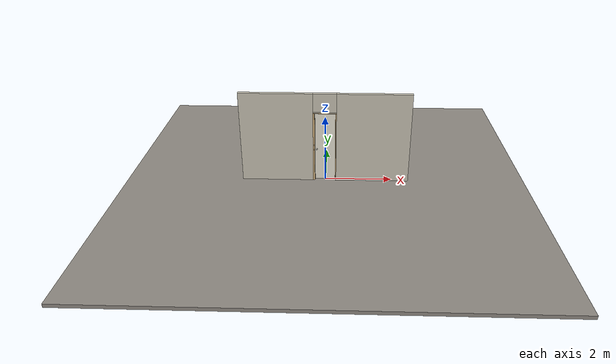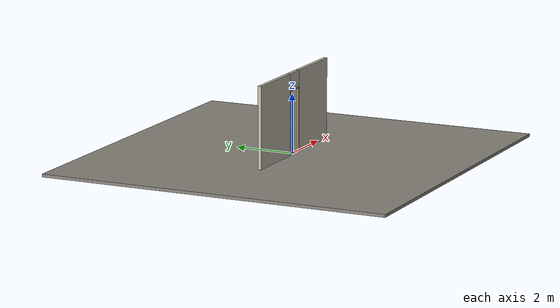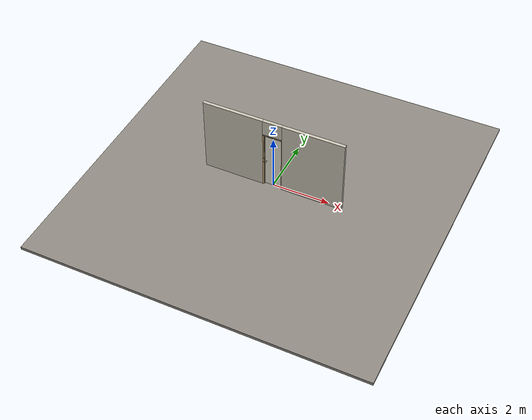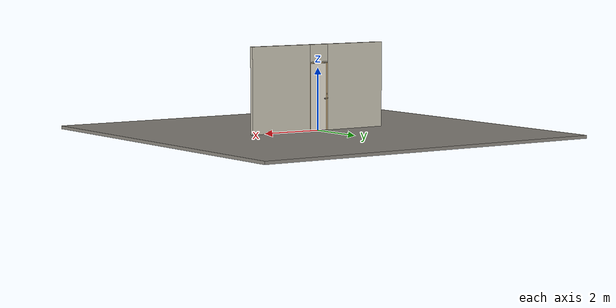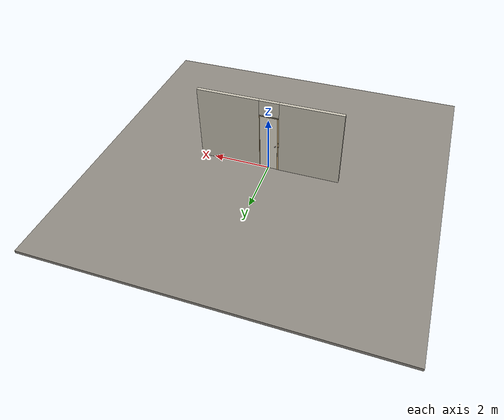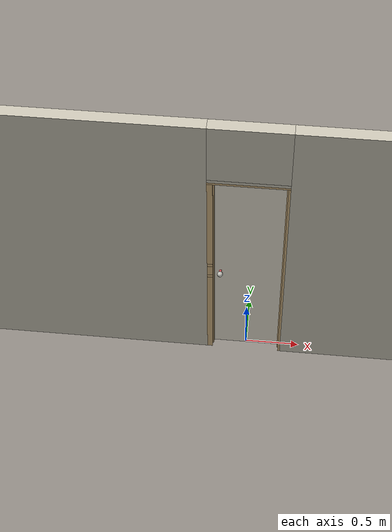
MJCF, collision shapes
<?xml version="1.0" ?>
<mujoco model="db0633_swing_single_minimal">
  <compiler angle="radian" meshdir="../../hardware" texturedir="../../textures" autolimits="true" inertiafromgeom="false"/>
  <option timestep="0.002" integrator="implicitfast" cone="elliptic" impratio="10" noslip_iterations="3">
    <flag multiccd="enable"/>
  </option>
  <size memory="16M"/>
  <default>
    <geom condim="4" solref="0.005 1" solimp="0.95 0.99 0.001"/>
    <joint solreflimit="0.005 1" solimplimit="0.95 0.99 0.001"/>
    <tendon solreflimit="0.005 1"/>
    <equality solref="0.002 1"/>
  </default>
  <visual>
    <headlight ambient="0.4 0.4 0.4" diffuse="0.7 0.7 0.7" specular="0.2 0.2 0.2"/>
    <quality shadowsize="4096"/>
    <map znear="0.01" zfar="60"/>
  </visual>
  <asset>
    <mesh name="knob_0ccd68d739" file="knob_0ccd68d739.obj"/>
    <material name="mat_floor" rgba="0.55 0.53 0.5 1" specular="0.2" shininess="0.15" reflectance="0"/>
    <material name="mat_wall" rgba="0.78 0.76 0.7 1" specular="0.2" shininess="0.1" reflectance="0"/>
    <material name="mat_leaf" rgba="0.9 0.88 0.82 1" specular="0.2" shininess="0.58" reflectance="0"/>
    <material name="mat_leaf_panel" rgba="0.828 0.81 0.754 1" specular="0.2" shininess="0.58" reflectance="0"/>
    <material name="mat_hinge" rgba="0.65 0.66 0.68 1" specular="0.74" shininess="0.5" reflectance="0.36"/>
    <material name="mat_op_hpl" rgba="0.75 0.75 0.72 1" specular="0.2" shininess="0.65" reflectance="0"/>
    <material name="mat_trim" rgba="0.85 0.66 0.3 1" specular="0.8" shininess="0.75" reflectance="0.4"/>
    <material name="mat_bolt" rgba="0.85 0.66 0.3 1" specular="0.8" shininess="0.75" reflectance="0.4"/>
    <material name="mat_deadbolt" rgba="0.85 0.66 0.3 1" specular="0.8" shininess="0.75" reflectance="0.4"/>
    <material name="mat_frame" rgba="0.82 0.7 0.5 1" specular="0.2" shininess="0.45" reflectance="0"/>
    <material name="mat_seal" rgba="0.1 0.1 0.1 1" specular="0.2" shininess="0.1" reflectance="0"/>
    <texture name="skybox" type="skybox" builtin="gradient" rgb1="0.6 0.7 0.85" rgb2="0.9 0.92 0.95" width="256" height="256"/>
  </asset>
  <worldbody>
    <light name="sun" pos="1.5 -2.5 4" dir="-0.3 0.5 -0.8" directional="true" diffuse="0.8 0.8 0.8" specular="0.3 0.3 0.3" castshadow="true"/>
    <light name="fill" pos="-1.5 2.5 3" dir="0.3 -0.5 -0.7" directional="true" diffuse="0.35 0.35 0.4" castshadow="false"/>
    <camera name="robot_view" pos="0 -2.670812 1.812087" xyaxes="1 0 0 0 0.26963 0.962964" fovy="52"/>
    <camera name="far_view" pos="0 2.604812 1.812087" xyaxes="-1 0 0 0 -0.26963 0.962964" fovy="52"/>
    <camera name="iso" pos="-2.004737 -2.248762 2.234138" xyaxes="0.741536 -0.670913 0 0.242917 0.268487 0.932151" fovy="46"/>
    <camera name="detail_handle" pos="-0.0645 -0.86375 1.296" xyaxes="0.97561 0.219512 0 -0.070934 0.315262 0.94635" fovy="38"/>
    <geom name="floor" type="box" size="6 6 0.05" pos="0 0 -0.05" material="mat_floor" group="0" contype="1" conaffinity="1" friction="0.8 0.005 0.0001" density="2400"/>
    <geom name="wall_left" type="box" size="1.07125 0.0575 1.3735" pos="-1.42875 -0.033 1.3735" material="mat_wall" group="0" contype="1" conaffinity="1" friction="0.6 0.005 0.0001" density="800"/>
    <geom name="wall_right" type="box" size="1.08625 0.0575 1.3735" pos="1.41375 -0.033 1.3735" material="mat_wall" group="0" contype="1" conaffinity="1" friction="0.6 0.005 0.0001" density="800"/>
    <geom name="wall_header" type="box" size="0.3425 0.0575 0.2755" pos="-0.015 -0.033 2.4715" material="mat_wall" group="0" contype="1" conaffinity="1" friction="0.6 0.005 0.0001" density="800"/>
    <geom name="jamb_hinge" type="box" size="0.0095 0.0575 1.0735" pos="0.318 -0.033 1.0735" material="mat_frame" group="0" contype="1" conaffinity="1" friction="0.6 0.005 0.0001" density="400"/>
    <geom name="strike_1016_wall_n" type="box" size="0.0245 0.041325 0.0167" pos="-0.333 -0.049175 1.016" material="mat_frame" group="0" contype="1" conaffinity="1" friction="0.6 0.005 0.0001" density="400"/>
    <geom name="strike_1016_wall_p" type="box" size="0.0245 0.008 0.0167" pos="-0.333 0.01585 1.016" material="mat_frame" group="0" contype="1" conaffinity="1" friction="0.6 0.005 0.0001" density="400"/>
    <geom name="strike_1016_ramp" type="box" size="0.0245 0.01649 0.0167" pos="-0.337636 0.028673 1.016" quat="0.977148 0 0 0.212558" material="mat_frame" group="0" contype="1" conaffinity="1" friction="0.12 0.005 0.0001" density="400"/>
    <geom name="strike_1016_back" type="box" size="0.01615 0.00785 0.0167" pos="-0.34135 0 1.016" material="mat_frame" group="0" contype="1" conaffinity="1" friction="0.6 0.005 0.0001" density="400"/>
    <geom name="strike_1156_wall_n" type="box" size="0.0245 0.0405 0.0155" pos="-0.333 -0.05 1.156" material="mat_frame" group="0" contype="1" conaffinity="1" friction="0.6 0.005 0.0001" density="400"/>
    <geom name="strike_1156_wall_p" type="box" size="0.0245 0.0075 0.0155" pos="-0.333 0.017 1.156" material="mat_frame" group="0" contype="1" conaffinity="1" friction="0.6 0.005 0.0001" density="400"/>
    <geom name="strike_1156_back" type="box" size="0.0098 0.0095 0.0155" pos="-0.3477 0 1.156" material="mat_frame" group="0" contype="1" conaffinity="1" friction="0.6 0.005 0.0001" density="400"/>
    <geom name="jamb_strike_0" type="box" size="0.0245 0.0575 0.49965" pos="-0.333 -0.033 0.49965" material="mat_frame" group="0" contype="1" conaffinity="1" friction="0.6 0.005 0.0001" density="400"/>
    <geom name="jamb_strike_1" type="box" size="0.0245 0.0575 0.0539" pos="-0.333 -0.033 1.0866" material="mat_frame" group="0" contype="1" conaffinity="1" friction="0.6 0.005 0.0001" density="400"/>
    <geom name="jamb_strike_2" type="box" size="0.0245 0.0575 0.48775" pos="-0.333 -0.033 1.65925" material="mat_frame" group="0" contype="1" conaffinity="1" friction="0.6 0.005 0.0001" density="400"/>
    <geom name="jamb_head" type="box" size="0.3425 0.0575 0.0095" pos="-0.015 -0.033 2.1565" material="mat_frame" group="0" contype="1" conaffinity="1" friction="0.6 0.005 0.0001" density="400"/>
    <geom name="head_stud" type="box" size="0.3425 0.0575 0.015" pos="-0.015 -0.033 2.181" material="mat_wall" group="0" contype="1" conaffinity="1" friction="0.6 0.005 0.0001" density="500"/>
    <geom name="stop_hinge" type="box" size="0.0055 0.016 1.0735" pos="0.303 -0.034 1.0735" material="mat_frame" group="0" contype="1" conaffinity="1" friction="0.6 0.005 0.0001" density="400"/>
    <geom name="stop_strike" type="box" size="0.0055 0.016 1.0735" pos="-0.303 -0.034 1.0735" material="mat_frame" group="0" contype="1" conaffinity="1" friction="0.6 0.005 0.0001" density="400"/>
    <geom name="stop_head" type="box" size="0.3085 0.016 0.0055" pos="0 -0.034 2.1415" material="mat_frame" group="0" contype="1" conaffinity="1" friction="0.6 0.005 0.0001" density="400"/>
    <site name="approach_point" pos="0 -1.5 0" quat="1 0 0 0" size="0.05" rgba="0.2 0.9 0.2 0.5" group="4"/>
    <site name="goal_point" pos="0 1.5 0" quat="1 0 0 0" size="0.05" rgba="0.2 0.9 0.2 0.5" group="4"/>
    <site name="door_plane_center" pos="0 0 1.0735" quat="1 0 0 0" size="0.02" rgba="0.2 0.9 0.2 0.5" group="4"/>
    <body name="leaf" pos="0.3085 0 0">
      <inertial pos="-0.308 0 1.076" mass="34.170675" quat="-0.5 0.5 0.5 0.5" diaginertia="1.063063937 12.971134126 14.027221551"/>
      <joint name="leaf_hinge" type="hinge" axis="0 0 -1" pos="-0.003 0.0245 0" limited="true" range="0 1.745329" solreflimit="0.02 1" damping="0.103362" frictionloss="1.006488" armature="0.02"/>
      <geom name="leaf_slab" type="box" size="0.305 0.0175 1.067" pos="-0.308 0 1.076" material="mat_leaf" group="0" contype="1" conaffinity="1" friction="0.4 0.005 0.0001" density="1"/>
      <site name="leaf_edge_mid" pos="-0.613 0 1.067" quat="1 0 0 0" size="0.02" rgba="0.2 0.9 0.2 0.5" group="4"/>
      <body name="leaf_handle" pos="-0.553 0 1.016">
        <inertial pos="0 0 0" mass="1.104803" quat="-0.5 0.5 -0.5 0.5" diaginertia="0.000297843 0.003830737 0.003830737"/>
        <joint name="leaf_handle_hinge" type="hinge" axis="0 1 0" limited="true" range="0 0.85" damping="0.128366" frictionloss="0.032" stiffness="0.4" springref="-0.5" armature="0.01"/>
        <geom name="leaf_handle_knob_n" type="mesh" mesh="knob_0ccd68d739" pos="0 -0.0175 0" quat="0 0 -0.707107 0.707107" material="mat_op_hpl" group="1" contype="0" conaffinity="0" density="3000"/>
        <geom name="leaf_handle_knob_col_n" type="sphere" size="0.02475" pos="0 -0.06375 0" material="mat_op_hpl" group="0" contype="1" conaffinity="1" friction="0.9 0.01 0.0001" density="3000"/>
        <geom name="leaf_handle_knob_neck_n" type="cylinder" size="0.011 0.012" pos="0 -0.0295 0" quat="0.707107 -0.707107 0 0" material="mat_op_hpl" group="3" contype="1" conaffinity="1" rgba="0.8 0.3 0.3 0.25" friction="0.6 0.005 0.0001" density="3000"/>
        <geom name="leaf_handle_knob_p" type="mesh" mesh="knob_0ccd68d739" pos="0 0.0175 0" quat="0 0 0.707107 0.707107" material="mat_op_hpl" group="1" contype="0" conaffinity="0" density="3000"/>
        <geom name="leaf_handle_knob_col_p" type="sphere" size="0.02475" pos="0 0.06375 0" material="mat_op_hpl" group="0" contype="1" conaffinity="1" friction="0.9 0.01 0.0001" density="3000"/>
        <geom name="leaf_handle_knob_neck_p" type="cylinder" size="0.011 0.012" pos="0 0.0295 0" quat="0.707107 -0.707107 0 0" material="mat_op_hpl" group="3" contype="1" conaffinity="1" rgba="0.8 0.3 0.3 0.25" friction="0.6 0.005 0.0001" density="3000"/>
        <site name="leaf_handle_grip_n" pos="0 -0.06375 0" quat="1 0 0 0" size="0.012" rgba="0.2 0.9 0.2 0.5" group="4"/>
        <site name="leaf_handle_grip_p" pos="0 0.06375 0" quat="1 0 0 0" size="0.012" rgba="0.2 0.9 0.2 0.5" group="4"/>
      </body>
      <body name="leaf_latch_bolt" pos="-0.613 0 1.016">
        <inertial pos="0.00865 0 0" mass="0.041419" quat="0.92388 0.382683 0 0" diaginertia="0.000000798 0.000005598 0.000005598"/>
        <joint name="leaf_latch_bolt_slide" type="slide" axis="1 0 0" limited="true" range="0 0.0127" damping="2" frictionloss="0.3" stiffness="300" springref="-0.008333" armature="0.1"/>
        <geom name="leaf_latch_bolt_capsule" type="capsule" size="0.00635 0.015" pos="0.00865 0 0" quat="0.707107 0 -0.707107 0" material="mat_bolt" group="0" contype="1" conaffinity="1" friction="0.2 0.005 0.0001" density="8500"/>
      </body>
    </body>
  </worldbody>
  <tendon>
    <fixed name="leaf_latch_bolt_coupling" limited="true" range="0 10">
      <joint joint="leaf_latch_bolt_slide" coef="1"/>
      <joint joint="leaf_handle_hinge" coef="-0.016933"/>
    </fixed>
  </tendon>
  <sensor>
    <jointpos name="leaf_hinge_pos" joint="leaf_hinge"/>
    <jointvel name="leaf_hinge_vel" joint="leaf_hinge"/>
    <jointpos name="leaf_handle_hinge_pos" joint="leaf_handle_hinge"/>
    <jointvel name="leaf_handle_hinge_vel" joint="leaf_handle_hinge"/>
    <jointpos name="leaf_latch_bolt_slide_pos" joint="leaf_latch_bolt_slide"/>
    <jointvel name="leaf_latch_bolt_slide_vel" joint="leaf_latch_bolt_slide"/>
  </sensor>
</mujoco>
